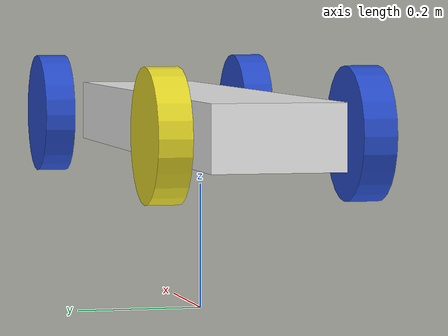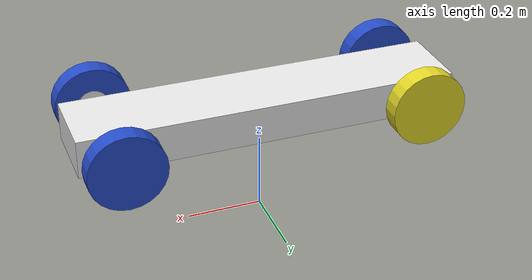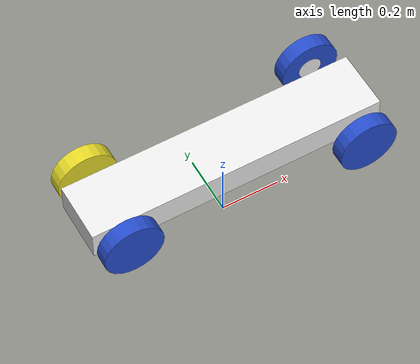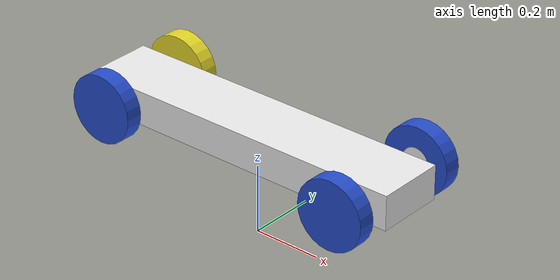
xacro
<?xml version="1.0"?>
<robot name="ackermann_1" xmlns:xacro="http://www.ros.org/wiki/xacro">

  <!-- Parameters for customization -->
  <xacro:include filename="ackerman_ros2_control.xacro"/>
<xacro:include filename="ackerman_macros.xacro"/>

  <xacro:property name="wheel_radius" value="0.1"/>
  <xacro:property name="wheel_length" value="0.05"/>
  <xacro:property name="wheel_clearance" value="0.15"/> <!-- Increased clearance -->
  <xacro:property name="chassis_length" value="1.0"/>
  <xacro:property name="chassis_width" value="0.2"/>
  <xacro:property name="chassis_height" value="0.1"/>
  <xacro:property name="wheel_base" value="0.4"/>
   <xacro:property name="mu1" value="10"/>
    <xacro:property name="mu2" value="10"/>

  <!-- Base link -->
  <link name="base_link"/>

  <!-- Chassis START -->

  <link name="chassis">
    <collision>
      <origin xyz="0 0 0.3" rpy="0 0 0"/>
      <geometry>
        <box size="${chassis_length} ${chassis_width} ${chassis_height}"/>
      </geometry>
    </collision>
    <visual>
      <origin xyz="0 0 0.3" rpy="0 0 0"/>
      <geometry>
        <box size="${chassis_length} ${chassis_width} ${chassis_height}"/>
      </geometry>
    </visual>
    <inertial>
      <mass value="5"/>
      <origin xyz="0 0 0.3" rpy="0 0 0"/>
      <inertia ixx="0.4" ixy="0.1" ixz="0.1" iyy="0.4" iyz="0.1" izz="0.2"/>
    </inertial>
  </link>

   <joint name="base_joint" type="fixed">
    <parent link="base_link"/>
    <child link="chassis"/>
  </joint>

  <gazebo reference="chassis">
    <material>Gazebo/White</material>
  </gazebo>

  <!-- Right Wheel - Start -->
  <link name="right_wheel">
    <collision>
      <origin xyz="0 0 0" rpy="0 1.5708 1.5708"/>
      <geometry>
        <cylinder length="${wheel_length}" radius="${wheel_radius}"/>
      </geometry>
    </collision>

    <visual>
      <origin xyz="0 0 0" rpy="0 1.5708 1.5708"/>
      <geometry>
        <cylinder length="${wheel_length}" radius="${wheel_radius}"/>
      </geometry>
    </visual>

      <xacro:cylinder_inertia m="1" r="0.3" h="0.1"  xyz="0 0 0" rpy="0 1.5708 1.5708"/>

  </link>

  <gazebo reference="right_wheel">
    <material>Gazebo/Blue</material>
    <mu1>${mu1}</mu1>
    <mu2>${mu2}</mu2>

  </gazebo>

  <link name="right_wheel_assembly">
    <collision>
      <origin xyz="0 0 0" rpy="0 1.5708 1.5708"/>
      <geometry>
        <sphere radius="0.04"/>
      </geometry>
    </collision>

    <visual>
      <origin xyz="0 0 0" rpy="0 1.5708 1.5708"/>
      <geometry>
        <cylinder length="0.001" radius="0.04"/>
      </geometry>
    </visual>
      <xacro:cylinder_inertia m="1" r="0.3" h="0.1"  xyz="0 0 0" rpy="0 1.5708 1.5708"/>

  </link>

  <gazebo reference="right_wheel_assembly">
    <material>Gazebo/White</material>
  </gazebo>

  <joint name="right_wheel_hinge" type="revolute">
    <parent link="chassis"/>
    <child link="right_wheel_assembly"/>
    <origin xyz="${wheel_base} ${wheel_clearance} 0.3" rpy="0 0 0"/>
    <axis xyz="0 0 1" rpy="0 0 0"/>
    <limit effort="100" velocity="1" lower="-1" upper="1"/>
    <dynamics damping="0.0" friction="0.0"/>
  </joint>

  <joint name="right_wheel_rotate" type="continuous">
    <parent link="right_wheel_assembly"/>
    <child link="right_wheel"/>
    <origin xyz="0.0 0.025 0.0" rpy="0 0 0"/>
    <axis xyz="0 1 0" rpy="0 0 0"/>
    <limit effort="100" velocity="50"/>
    <dynamics damping="0.0" friction="0.0"/>
  </joint>
  <!-- Right Wheel - End -->

  <!-- Left Wheel - Start -->
  <link name="left_wheel">
    <collision>
      <origin xyz="0 0 0" rpy="0 1.5708 1.5708"/>
      <geometry>
        <cylinder length="${wheel_length}" radius="${wheel_radius}"/>
      </geometry>
    </collision>

    <visual>
      <origin xyz="0 0 0" rpy="0 1.5708 1.5708"/>
      <geometry>
        <cylinder length="${wheel_length}" radius="${wheel_radius}"/>
      </geometry>
    </visual>

      <xacro:cylinder_inertia m="1" r="0.3" h="0.1"  xyz="0 0 0" rpy="0 1.5708 1.5708"/>

  </link>

  <gazebo reference="left_wheel">
    <material>Gazebo/Blue</material>
     <mu1>${mu1}</mu1>
    <mu2>${mu2}</mu2>

  </gazebo>

  <link name="left_wheel_assembly">
    <collision>
      <origin xyz="0 0 0" rpy="0 1.5708 1.5708"/>
      <geometry>
        <cylinder length="0.001" radius="0.04"/>
      </geometry>
    </collision>

    <visual>
      <origin xyz="0 0 0" rpy="0 1.5708 1.5708"/>
      <geometry>
        <cylinder length="0.001" radius="0.04"/>
      </geometry>
    </visual>

      <xacro:cylinder_inertia m="1" r="0.3" h="0.1"  xyz="0 0 0" rpy="0 1.5708 1.5708"/>

  </link>

  <gazebo reference="left_wheel_assembly">
    <material>Gazebo/White</material>
  </gazebo>

  <joint name="left_wheel_hinge" type="revolute">
    <parent link="chassis"/>
    <child link="left_wheel_assembly"/>
    <origin xyz="${wheel_base} -${wheel_clearance} 0.3" rpy="0 0 0"/>
    <axis xyz="0 0 1" rpy="0 0 0"/>
    <limit effort="100" velocity="1" lower="-1" upper="1"/>
    <dynamics damping="0.0" friction="0.0"/>
  </joint>

  <joint name="left_wheel_rotate" type="continuous">
    <parent link="left_wheel_assembly"/>
    <child link="left_wheel"/>
    <origin xyz="0.0 -0.025 0.0" rpy="0 0 0"/>
    <axis xyz="0 1 0" rpy="0 0 0"/>
  </joint>
  <!-- Left Wheel - End -->

  <link name="right_wheel_rear">

		<collision>
		  <origin xyz="0 0 0" rpy="0 1.5708 1.5708" />
		  <geometry>
			<cylinder length="0.05" radius="0.1"/>
		  </geometry>
		</collision>

		<visual>
		  <origin xyz="0 0 0" rpy="0 1.5708 1.5708" />
		  <geometry>
			<cylinder length="0.05" radius="0.1"/>
		  </geometry>
		</visual>

      <xacro:cylinder_inertia m="1" r="0.3" h="0.1"  xyz="0 0 0" rpy="0 1.5708 1.5708"/>

	</link>

  <joint name="right_wheel_rear_rotate" type="continuous">
    <parent link="chassis"/>
    <child link="right_wheel_rear"/>
    <origin xyz="-0.4 0.15 0.3" rpy="0 0 0" />
    <axis xyz="0 1 0" rpy="0 0 0" />
  </joint>

  <gazebo reference="right_wheel_rear">
    <material>Gazebo/Yellow</material>
     <mu1>${mu1}</mu1>
    <mu2>${mu2}</mu2>

  </gazebo>

  <!-- Right Rear Wheel End -->

    <!-- Right Rear Wheel Start -->
	<link name="left_wheel_rear">

		<collision>
		  <origin xyz="0 0 0" rpy="0 1.5708 1.5708" />
		  <geometry>
			<cylinder length="0.05" radius="0.1"/>
		  </geometry>
		</collision>

		<visual>
		  <origin xyz="0 0 0" rpy="0 1.5708 1.5708" />
		  <geometry>
			<cylinder length="0.05" radius="0.1"/>
		  </geometry>
		</visual>
      <xacro:cylinder_inertia m="1" r="0.3" h="0.1"  xyz="0 0 0" rpy="0 1.5708 1.5708"/>

	</link>

  <joint name="left_wheel_rear_rotate" type="continuous">
    <parent link="chassis"/>
    <child link="left_wheel_rear"/>
    <origin xyz="-0.4 -0.15 0.3" rpy="0 0 0" />
    <axis xyz="0 1 0" rpy="0 0 0" />
  </joint>

  <gazebo reference="left_wheel_rear">
    <material>Gazebo/Blue</material>
     <mu1>${mu1}</mu1>
    <mu2>${mu2}</mu2>

  </gazebo>

</robot>
